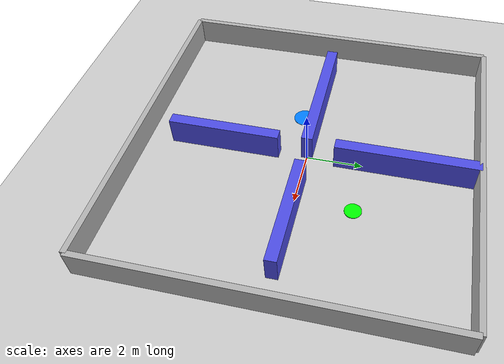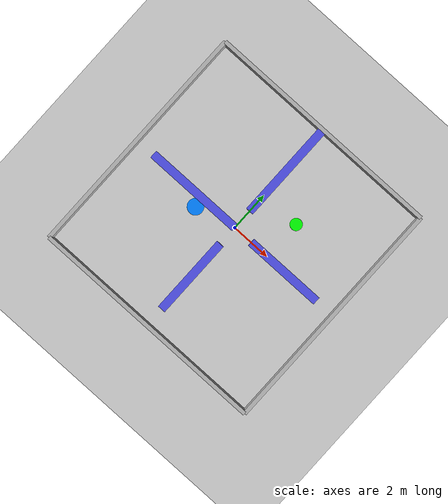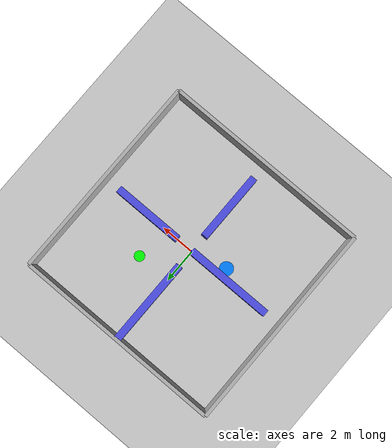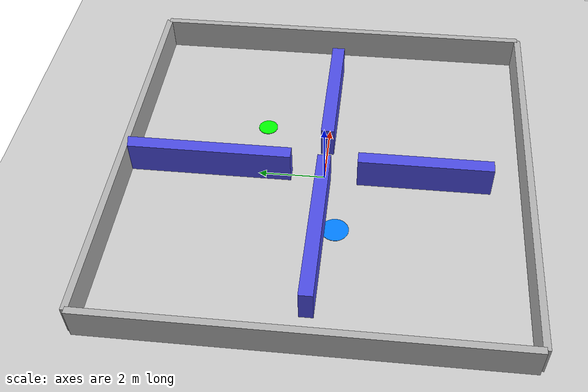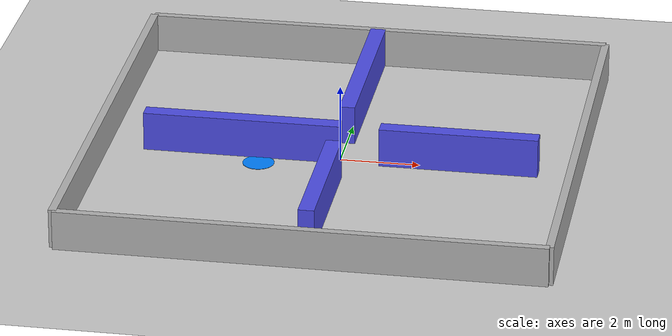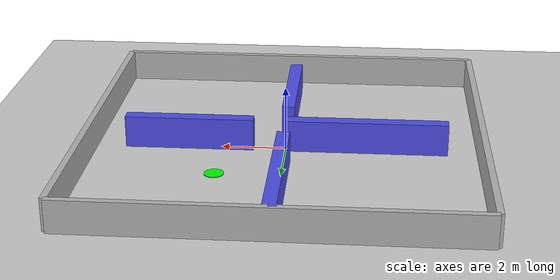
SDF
<?xml version="1.0" ?>
<sdf version="1.7">
  <world name="maze_world_1">
    <physics type="ode">
      <real_time_update_rate>1000.0</real_time_update_rate>
      <max_step_size>0.001</max_step_size>
      <real_time_factor>1</real_time_factor>
      <ode>
        <solver>
          <type>quick</type>
          <iters>150</iters>
          <precon_iters>0</precon_iters>
          <sor>1.400000</sor>
          <use_dynamic_moi_rescaling>1</use_dynamic_moi_rescaling>
        </solver>
        <constraints>
          <cfm>0.00001</cfm>
          <erp>0.2</erp>
          <contact_max_correcting_vel>2000.000000</contact_max_correcting_vel>
          <contact_surface_layer>0.01000</contact_surface_layer>
        </constraints>
      </ode>
    </physics>
    <plugin
      filename="gz-sim-physics-system"
      name="gz::sim::systems::Physics">
    </plugin>
    <plugin
      filename="gz-sim-user-commands-system"
      name="gz::sim::systems::UserCommands">
    </plugin>
    <plugin
      filename="gz-sim-scene-broadcaster-system"
      name="gz::sim::systems::SceneBroadcaster">
    </plugin>
    <plugin
      filename="gz-sim-sensors-system"
      name="gz::sim::systems::Sensors">
      <render_engine>ogre2</render_engine>
    </plugin>
    <plugin
      filename="gz-sim-imu-system"
      name="gz::sim::systems::Imu">
    </plugin>

    <include>
      <uri>https://fuel.gazebosim.org/1.0/OpenRobotics/models/Ground Plane</uri>
    </include>

    <include>
      <uri>https://fuel.gazebosim.org/1.0/OpenRobotics/models/Sun</uri>
    </include>

    <!-- Outer box: 12 x 12 m -->
    <model name="outer_wall_north">
      <static>true</static>
      <pose>0 6 0.5 0 0 0</pose>
      <link name="link">
        <collision name="collision">
          <geometry><box><size>12 0.2 1</size></box></geometry>
        </collision>
        <visual name="visual">
          <geometry><box><size>12 0.2 1</size></box></geometry>
          <material><ambient>0.7 0.7 0.7 1</ambient></material>
        </visual>
      </link>
    </model>

    <model name="outer_wall_south">
      <static>true</static>
      <pose>0 -6 0.5 0 0 0</pose>
      <link name="link">
        <collision name="collision">
          <geometry><box><size>12 0.2 1</size></box></geometry>
        </collision>
        <visual name="visual">
          <geometry><box><size>12 0.2 1</size></box></geometry>
          <material><ambient>0.7 0.7 0.7 1</ambient></material>
        </visual>
      </link>
    </model>

    <model name="outer_wall_east">
      <static>true</static>
      <pose>6 0 0.5 0 0 0</pose>
      <link name="link">
        <collision name="collision">
          <geometry><box><size>0.2 12 1</size></box></geometry>
        </collision>
        <visual name="visual">
          <geometry><box><size>0.2 12 1</size></box></geometry>
          <material><ambient>0.7 0.7 0.7 1</ambient></material>
        </visual>
      </link>
    </model>

    <model name="outer_wall_west">
      <static>true</static>
      <pose>-6 0 0.5 0 0 0</pose>
      <link name="link">
        <collision name="collision">
          <geometry><box><size>0.2 12 1</size></box></geometry>
        </collision>
        <visual name="visual">
          <geometry><box><size>0.2 12 1</size></box></geometry>
          <material><ambient>0.7 0.7 0.7 1</ambient></material>
        </visual>
      </link>
    </model>

    <!-- Plus-shaped inner maze with OPEN CENTER -->

    <!-- Vertical top segment: from y = 1 to y = 6 -->
    <model name="inner_vertical_top">
      <static>true</static>
      <pose>0 3.5 0.5 0 0 0</pose>
      <link name="link">
        <collision name="collision">
          <geometry><box><size>0.4 5 1</size></box></geometry>
        </collision>
        <visual name="visual">
          <geometry><box><size>0.4 5 1</size></box></geometry>
          <material><ambient>0.3 0.3 0.9 1</ambient></material>
        </visual>
      </link>
    </model>

    <!-- Vertical bottom segment: from y = -6 to y = -1 -->
    <model name="inner_vertical_bottom">
      <static>true</static>
      <pose>0 -3 0.5 0 0 0</pose>
      <link name="link">
        <collision name="collision">
          <geometry><box><size>0.4 4 1</size></box></geometry>
        </collision>
        <visual name="visual">
          <geometry><box><size>0.4 4 1</size></box></geometry>
          <material><ambient>0.3 0.3 0.9 1</ambient></material>
        </visual>
      </link>
    </model>

    <!-- Horizontal left segment: from x = -6 to x = -1 -->
    <model name="inner_horizontal_left">
      <static>true</static>
      <pose>-2.5 0 0.5 0 0 0</pose>
      <link name="link">
        <collision name="collision">
          <geometry><box><size>5 0.4 1</size></box></geometry>
        </collision>
        <visual name="visual">
          <geometry><box><size>5 0.4 1</size></box></geometry>
          <material><ambient>0.3 0.3 0.9 1</ambient></material>
        </visual>
      </link>
    </model>

    <!-- Horizontal right segment: from x = 1 to x = 6 -->
    <model name="inner_horizontal_right">
      <static>true</static>
      <pose>3 0 0.5 0 0 0</pose>
      <link name="link">
        <collision name="collision">
          <geometry><box><size>4 0.4 1</size></box></geometry>
        </collision>
        <visual name="visual">
          <geometry><box><size>4 0.4 1</size></box></geometry>
          <material><ambient>0.3 0.3 0.9 1</ambient></material>
        </visual>
      </link>
    </model>

    <!-- Goal marker at (-2.0, -2.0) - Green circle on the ground -->
    <model name="goal_marker">
      <static>true</static>
      <pose>2.0 2.0 0.01 0 0 0</pose>
      <link name="link">
        <visual name="visual">
          <geometry>
            <cylinder>
              <radius>0.3</radius>
              <length>0.02</length>
            </cylinder>
          </geometry>
          <material>
            <ambient>0.0 1.0 0.0 1</ambient>
            <diffuse>0.0 1.0 0.0 1</diffuse>
            <emissive>0.0 0.5 0.0 1</emissive>
          </material>
        </visual>
      </link>
    </model>

    <!-- Start marker at (-2.0, -0.5) - Blue circle on the ground -->
    <model name="start_marker">
      <static>true</static>
      <pose>-2.0 -0.5 0.005 0 0 0</pose>
      <link name="link">
        <visual name="visual">
          <geometry>
            <cylinder>
              <radius>0.4</radius>
              <length>0.01</length>
            </cylinder>
          </geometry>
          <material>
            <ambient>0.0 0.5 1.0 1</ambient>
            <diffuse>0.0 0.5 1.0 1</diffuse>
            <emissive>0.0 0.3 0.8 1</emissive>
          </material>
        </visual>
      </link>
    </model>

  </world>
</sdf>
